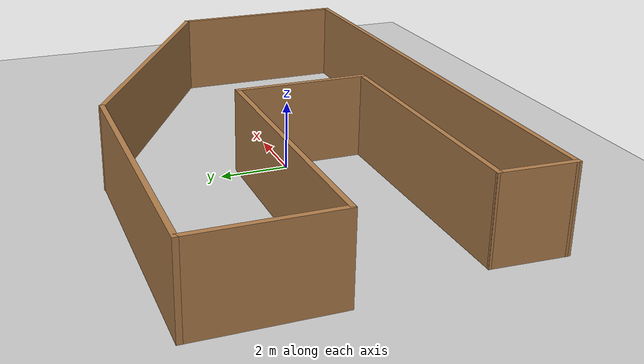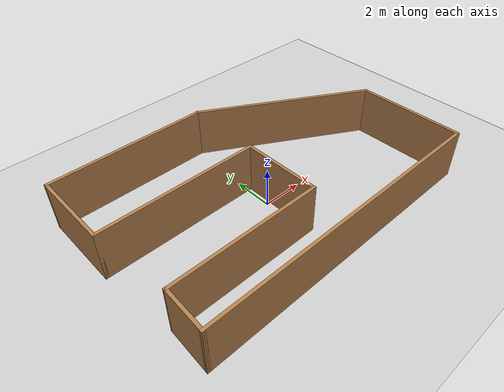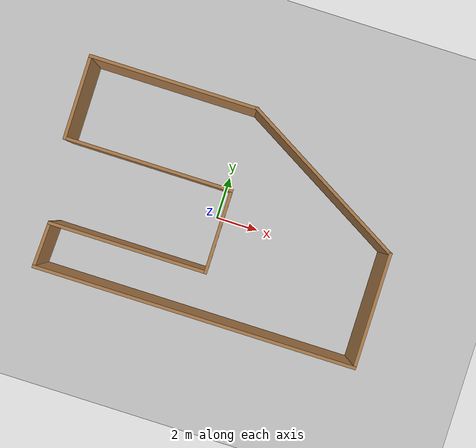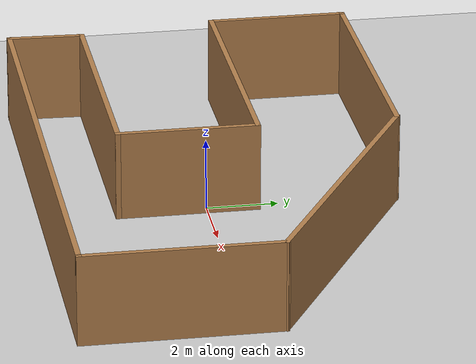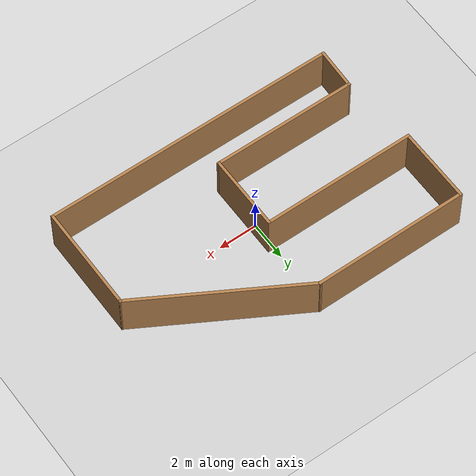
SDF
<sdf version="1.7">
 <world name="default">
  <light name="sun" type="directional">
   <pose>0 0 10 0 -0 0</pose>
   <diffuse>0.8 0.8 0.8 1</diffuse>
   <specular>0.2 0.2 0.2 1</specular>
   <attenuation>
    <range>1000</range>
    <constant>0.9</constant>
    <linear>0.01</linear>
    <quadratic>0.001</quadratic>
   </attenuation>
   <direction>-0.5 0.1 -0.9</direction>
   <spot><inner_angle>0</inner_angle><outer_angle>0</outer_angle><falloff>0</falloff></spot>
  </light>
  <model name="ground_plane">
   <static>1</static>
   <link name="link">
    <collision name="collision">
     <geometry><plane><normal>0 0 1</normal><size>100 100</size></plane></geometry>
     <surface>
      <contact><collide_bitmask>65535</collide_bitmask></contact>
      <friction><ode><mu>100</mu><mu2>50</mu2></ode></friction>
     </surface>
    </collision>
    <visual name="visual">
     <cast_shadows>0</cast_shadows>
     <geometry><plane><normal>0 0 1</normal><size>100 100</size></plane></geometry>
     <material>
      <script><uri>file://media/materials/scripts/gazebo.material</uri><name>Gazebo/Grey</name></script>
     </material>
    </visual>
   </link>
  </model>
  <gravity>0 0 -9.8</gravity>
  <magnetic_field>6e-06 2.3e-05 -4.2e-05</magnetic_field>
  <atmosphere type="adiabatic"/>
  <physics type="ode">
   <max_step_size>0.001</max_step_size>
   <real_time_factor>1</real_time_factor>
   <real_time_update_rate>1000</real_time_update_rate>
  </physics>
  <scene><ambient>0.4 0.4 0.4 1</ambient><background>0.7 0.7 0.7 1</background><shadows>1</shadows></scene>
  <audio><device>default</device></audio>
  <spherical_coordinates>
   <surface_model>EARTH_WGS84</surface_model>
   <latitude_deg>0</latitude_deg>
   <longitude_deg>0</longitude_deg>
   <elevation>0</elevation>
   <heading_deg>0</heading_deg>
  </spherical_coordinates>
  <model name="wall_follower">
   <pose>0.170958 0.358634 0 0 -0 0</pose>
   <link name="Wall_13">
    <collision name="Wall_13_Collision">
     <geometry><box><size>15.25 0.15 2.5</size></box></geometry>
     <pose>0 0 1.25 0 -0 0</pose>
    </collision>
    <visual name="Wall_13_Visual">
     <pose>0 0 1.25 0 -0 0</pose>
     <geometry><box><size>15.25 0.15 2.5</size></box></geometry>
     <material>
      <script><uri>file://media/materials/scripts/gazebo.material</uri><name>Gazebo/Wood</name></script>
      <ambient>1 1 1 1</ambient>
     </material>
     <meta><layer>0</layer></meta>
    </visual>
    <pose>0.193436 -4.89971 0 0 -0 0</pose>
   </link>
   <link name="Wall_14">
    <collision name="Wall_14_Collision">
     <geometry><box><size>5.5 0.15 2.5</size></box></geometry>
     <pose>0 0 1.25 0 -0 0</pose>
    </collision>
    <visual name="Wall_14_Visual">
     <pose>0 0 1.25 0 -0 0</pose>
     <geometry><box><size>5.5 0.15 2.5</size></box></geometry>
     <material>
      <script><uri>file://media/materials/scripts/gazebo.material</uri><name>Gazebo/Wood</name></script>
      <ambient>1 1 1 1</ambient>
     </material>
     <meta><layer>0</layer></meta>
    </visual>
    <pose>7.74344 -2.22471 0 0 -0 1.5708</pose>
   </link>
   <link name="Wall_15">
    <collision name="Wall_15_Collision">
     <geometry><box><size>9 0.15 2.5</size></box></geometry>
     <pose>0 0 1.25 0 -0 0</pose>
    </collision>
    <visual name="Wall_15_Visual">
     <pose>0 0 1.25 0 -0 0</pose>
     <geometry><box><size>9 0.15 2.5</size></box></geometry>
     <material>
      <script><uri>file://media/materials/scripts/gazebo.material</uri><name>Gazebo/Wood</name></script>
      <ambient>1 1 1 1</ambient>
     </material>
     <meta><layer>0</layer></meta>
    </visual>
    <pose>3.91127 2.66279 0 0 -0 2.61799</pose>
   </link>
   <link name="Wall_16">
    <collision name="Wall_16_Collision">
     <geometry><box><size>8 0.15 2.5</size></box></geometry>
     <pose>0 0 1.25 0 -0 0</pose>
    </collision>
    <visual name="Wall_16_Visual">
     <pose>0 0 1.25 0 -0 0</pose>
     <geometry><box><size>8 0.15 2.5</size></box></geometry>
     <material>
      <script><uri>file://media/materials/scripts/gazebo.material</uri><name>Gazebo/Wood</name></script>
      <ambient>1 1 1 1</ambient>
     </material>
     <meta><layer>0</layer></meta>
    </visual>
    <pose>-3.84589 4.87529 0 0 -0 3.14159</pose>
   </link>
   <link name="Wall_17">
    <collision name="Wall_17_Collision">
     <geometry><box><size>4 0.15 2.5</size></box></geometry>
     <pose>0 0 1.25 0 -0 0</pose>
    </collision>
    <visual name="Wall_17_Visual">
     <pose>0 0 1.25 0 -0 0</pose>
     <geometry><box><size>4 0.15 2.5</size></box></geometry>
     <material>
      <script><uri>file://media/materials/scripts/gazebo.material</uri><name>Gazebo/Wood</name></script>
      <ambient>1 1 1 1</ambient>
     </material>
     <meta><layer>0</layer></meta>
    </visual>
    <pose>-7.77089 2.95029 0 0 -0 -1.5708</pose>
   </link>
   <link name="Wall_18">
    <collision name="Wall_18_Collision">
     <geometry><box><size>8 0.15 2.5</size></box></geometry>
     <pose>0 0 1.25 0 -0 0</pose>
    </collision>
    <visual name="Wall_18_Visual">
     <pose>0 0 1.25 0 -0 0</pose>
     <geometry><box><size>8 0.15 2.5</size></box></geometry>
     <material>
      <script><uri>file://media/materials/scripts/gazebo.material</uri><name>Gazebo/Wood</name></script>
      <ambient>1 1 1 1</ambient>
     </material>
     <meta><layer>0</layer></meta>
    </visual>
    <pose>-3.84589 1.02529 0 0 -0 0</pose>
   </link>
   <link name="Wall_19">
    <collision name="Wall_19_Collision">
     <geometry><box><size>4 0.15 2.5</size></box></geometry>
     <pose>0 0 1.25 0 -0 0</pose>
    </collision>
    <visual name="Wall_19_Visual">
     <pose>0 0 1.25 0 -0 0</pose>
     <geometry><box><size>4 0.15 2.5</size></box></geometry>
     <material>
      <script><uri>file://media/materials/scripts/gazebo.material</uri><name>Gazebo/Wood</name></script>
      <ambient>1 1 1 1</ambient>
     </material>
     <meta><layer>0</layer></meta>
    </visual>
    <pose>0.079111 -0.899711 0 0 -0 -1.5708</pose>
   </link>
   <link name="Wall_20">
    <collision name="Wall_20_Collision">
     <geometry><box><size>7.5 0.15 2.5</size></box></geometry>
     <pose>0 0 1.25 0 -0 0</pose>
    </collision>
    <visual name="Wall_20_Visual">
     <pose>0 0 1.25 0 -0 0</pose>
     <geometry><box><size>7.5 0.15 2.5</size></box></geometry>
     <material>
      <script><uri>file://media/materials/scripts/gazebo.material</uri><name>Gazebo/Wood</name></script>
      <ambient>1 1 1 1</ambient>
     </material>
     <meta><layer>0</layer></meta>
    </visual>
    <pose>-3.59589 -2.82471 0 0 -0 3.14159</pose>
   </link>
   <link name="Wall_21">
    <collision name="Wall_21_Collision">
     <geometry><box><size>2.22677 0.15 2.5</size></box></geometry>
     <pose>0 0 1.25 0 -0 0</pose>
    </collision>
    <visual name="Wall_21_Visual">
     <pose>0 0 1.25 0 -0 0</pose>
     <geometry><box><size>2.22677 0.15 2.5</size></box></geometry>
     <material>
      <script><uri>file://media/materials/scripts/gazebo.material</uri><name>Gazebo/Wood</name></script>
      <ambient>1 1 1 1</ambient>
     </material>
     <meta><layer>0</layer></meta>
    </visual>
    <pose>-7.31373 -3.86221 0 0 -0 -1.61206</pose>
   </link>
   <static>1</static>
  </model>
  <light name="user_directional_light_0" type="directional">
   <pose>7.49421 6.67642 1 0 -0 0</pose>
   <diffuse>0.5 0.5 0.5 1</diffuse>
   <specular>0.1 0.1 0.1 1</specular>
   <direction>0.1 0.1 -0.9</direction>
   <attenuation>
    <range>20</range>
    <constant>0.5</constant>
    <linear>0.01</linear>
    <quadratic>0.001</quadratic>
   </attenuation>
  </light>
  <light name="user_directional_light_1" type="directional">
   <pose>-6.01124 7.85073 1 0 -0 0</pose>
   <diffuse>0.5 0.5 0.5 1</diffuse>
   <specular>0.1 0.1 0.1 1</specular>
   <direction>0.1 0.1 -0.9</direction>
   <attenuation>
    <range>20</range>
    <constant>0.5</constant>
    <linear>0.01</linear>
    <quadratic>0.001</quadratic>
   </attenuation>
  </light>
  <light name="user_directional_light_2" type="directional">
   <pose>8.14701 -7.92016 1 0 -0 0</pose>
   <diffuse>0.5 0.5 0.5 1</diffuse>
   <specular>0.1 0.1 0.1 1</specular>
   <direction>0.1 0.1 -0.9</direction>
   <attenuation>
    <range>20</range>
    <constant>0.5</constant>
    <linear>0.01</linear>
    <quadratic>0.001</quadratic>
   </attenuation>
  </light>
 </world>
</sdf>
